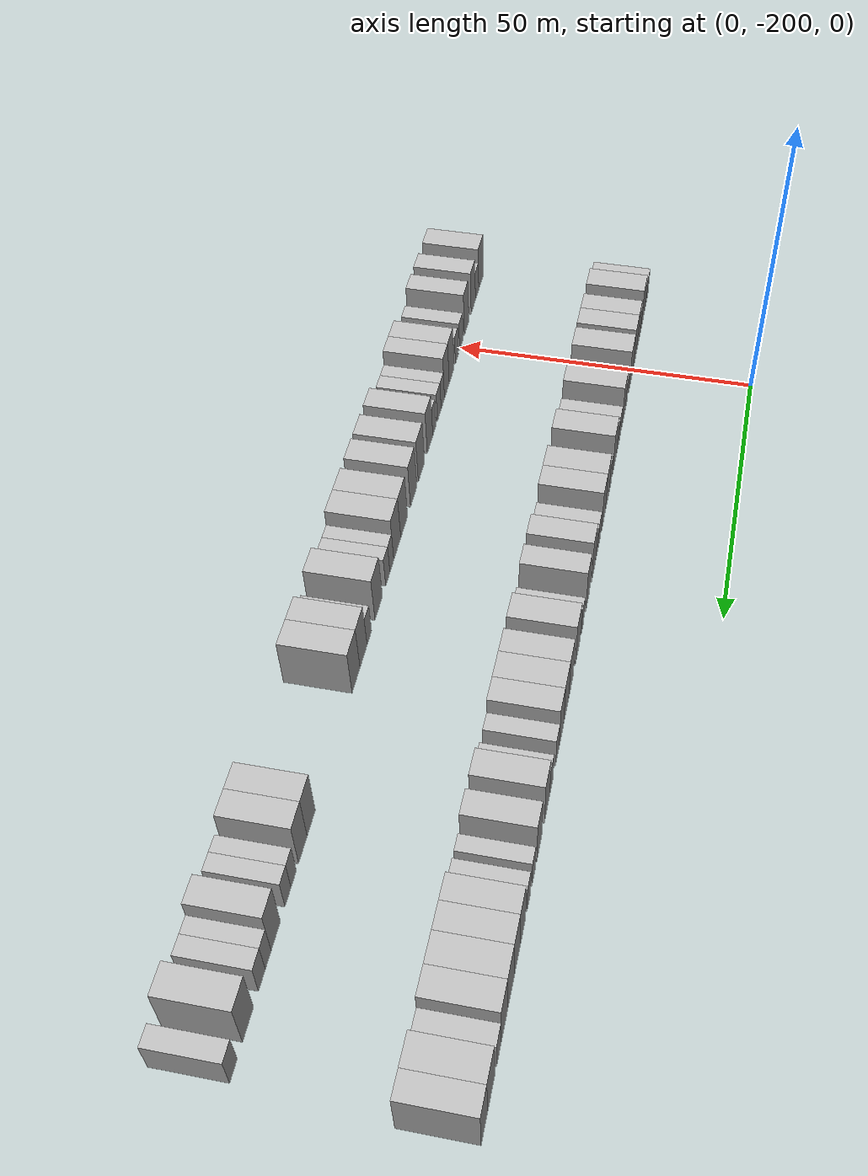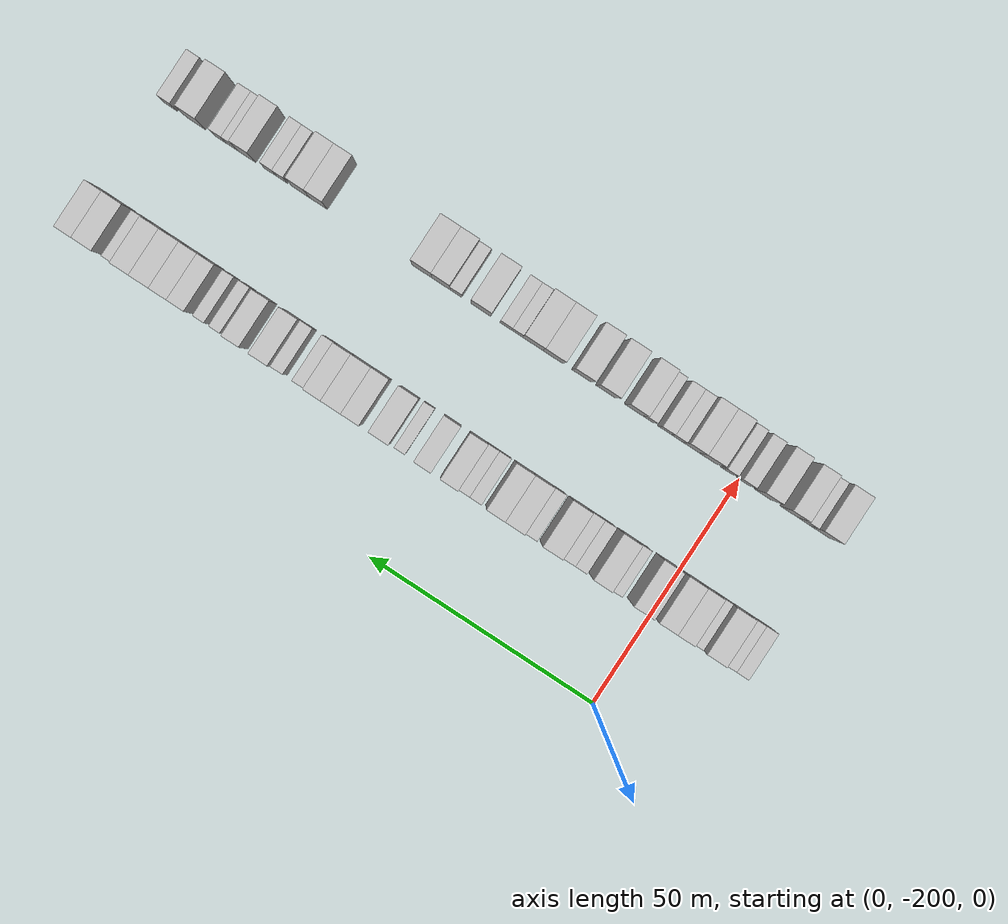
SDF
<sdf version="1.6">
 <world name="default">
  <model name="building_1">
   <static>1</static>
   <pose>25.0000 -218.6765 0 0.000000 0.000000 0.000000</pose>
   <link name="link">
    <pose>0 0 3.00 0 0 0</pose>
    <collision name="collision"><geometry><box><size>10.0000 2.6469 6.0000</size></box></geometry></collision>
    <visual name="visual">
     <cast_shadows>0</cast_shadows>
     <geometry><box><size>10.0000 2.6469 6.0000</size></box></geometry>
     <material>
      <script>
       <uri>model://HANNAS_wall/materials/scripts</uri>
       <uri>model://HANNAS_wall/materials/textures</uri>
       <name>vrc/HANNAS_wall</name>
      </script>
     </material>
    </visual>
   </link>
  </model>
  <model name="building_2">
   <static>1</static>
   <pose>25.0000 -215.8874 0 0.000000 0.000000 0.000000</pose>
   <link name="link">
    <pose>0 0 3.00 0 0 0</pose>
    <collision name="collision"><geometry><box><size>10.0000 2.9313 6.0000</size></box></geometry></collision>
    <visual name="visual">
     <cast_shadows>0</cast_shadows>
     <geometry><box><size>10.0000 2.9313 6.0000</size></box></geometry>
     <material>
      <script>
       <uri>model://HANNAS_wall/materials/scripts</uri>
       <uri>model://HANNAS_wall/materials/textures</uri>
       <name>vrc/HANNAS_wall</name>
      </script>
     </material>
    </visual>
   </link>
  </model>
  <model name="building_3">
   <static>1</static>
   <pose>25.0000 -212.2901 0 0.000000 0.000000 0.000000</pose>
   <link name="link">
    <pose>0 0 4.50 0 0 0</pose>
    <collision name="collision"><geometry><box><size>10.0000 4.2634 9.0000</size></box></geometry></collision>
    <visual name="visual">
     <cast_shadows>0</cast_shadows>
     <geometry><box><size>10.0000 4.2634 9.0000</size></box></geometry>
     <material>
      <script>
       <uri>model://HANNAS_wall/materials/scripts</uri>
       <uri>model://HANNAS_wall/materials/textures</uri>
       <name>vrc/HANNAS_wall</name>
      </script>
     </material>
    </visual>
   </link>
  </model>
  <model name="building_4">
   <static>1</static>
   <pose>25.0000 -208.8919 0 0.000000 0.000000 0.000000</pose>
   <link name="link">
    <pose>0 0 3.00 0 0 0</pose>
    <collision name="collision"><geometry><box><size>10.0000 2.5329 6.0000</size></box></geometry></collision>
    <visual name="visual">
     <cast_shadows>0</cast_shadows>
     <geometry><box><size>10.0000 2.5329 6.0000</size></box></geometry>
     <material>
      <script>
       <uri>model://HANNAS_wall/materials/scripts</uri>
       <uri>model://HANNAS_wall/materials/textures</uri>
       <name>vrc/HANNAS_wall</name>
      </script>
     </material>
    </visual>
   </link>
  </model>
  <model name="building_5">
   <static>1</static>
   <pose>25.0000 -205.7682 0 0.000000 0.000000 0.000000</pose>
   <link name="link">
    <pose>0 0 4.50 0 0 0</pose>
    <collision name="collision"><geometry><box><size>10.0000 3.7144 9.0000</size></box></geometry></collision>
    <visual name="visual">
     <cast_shadows>0</cast_shadows>
     <geometry><box><size>10.0000 3.7144 9.0000</size></box></geometry>
     <material>
      <script>
       <uri>model://HANNAS_wall/materials/scripts</uri>
       <uri>model://HANNAS_wall/materials/textures</uri>
       <name>vrc/HANNAS_wall</name>
      </script>
     </material>
    </visual>
   </link>
  </model>
  <model name="building_6">
   <static>1</static>
   <pose>25.0000 -201.9411 0 0.000000 0.000000 0.000000</pose>
   <link name="link">
    <pose>0 0 4.50 0 0 0</pose>
    <collision name="collision"><geometry><box><size>10.0000 3.9398 9.0000</size></box></geometry></collision>
    <visual name="visual">
     <cast_shadows>0</cast_shadows>
     <geometry><box><size>10.0000 3.9398 9.0000</size></box></geometry>
     <material>
      <script>
       <uri>model://HANNAS_wall/materials/scripts</uri>
       <uri>model://HANNAS_wall/materials/textures</uri>
       <name>vrc/HANNAS_wall</name>
      </script>
     </material>
    </visual>
   </link>
  </model>
  <model name="building_7">
   <static>1</static>
   <pose>25.0000 -196.7519 0 0.000000 0.000000 0.000000</pose>
   <link name="link">
    <pose>0 0 4.50 0 0 0</pose>
    <collision name="collision"><geometry><box><size>10.0000 4.4386 9.0000</size></box></geometry></collision>
    <visual name="visual">
     <cast_shadows>0</cast_shadows>
     <geometry><box><size>10.0000 4.4386 9.0000</size></box></geometry>
     <material>
      <script>
       <uri>model://HANNAS_wall/materials/scripts</uri>
       <uri>model://HANNAS_wall/materials/textures</uri>
       <name>vrc/HANNAS_wall</name>
      </script>
     </material>
    </visual>
   </link>
  </model>
  <model name="building_8">
   <static>1</static>
   <pose>25.0000 -191.2256 0 0.000000 0.000000 0.000000</pose>
   <link name="link">
    <pose>0 0 3.00 0 0 0</pose>
    <collision name="collision"><geometry><box><size>10.0000 2.6140 6.0000</size></box></geometry></collision>
    <visual name="visual">
     <cast_shadows>0</cast_shadows>
     <geometry><box><size>10.0000 2.6140 6.0000</size></box></geometry>
     <material>
      <script>
       <uri>model://HANNAS_wall/materials/scripts</uri>
       <uri>model://HANNAS_wall/materials/textures</uri>
       <name>vrc/HANNAS_wall</name>
      </script>
     </material>
    </visual>
   </link>
  </model>
  <model name="building_9">
   <static>1</static>
   <pose>25.0000 -187.8880 0 0.000000 0.000000 0.000000</pose>
   <link name="link">
    <pose>0 0 4.50 0 0 0</pose>
    <collision name="collision"><geometry><box><size>10.0000 4.0611 9.0000</size></box></geometry></collision>
    <visual name="visual">
     <cast_shadows>0</cast_shadows>
     <geometry><box><size>10.0000 4.0611 9.0000</size></box></geometry>
     <material>
      <script>
       <uri>model://HANNAS_wall/materials/scripts</uri>
       <uri>model://HANNAS_wall/materials/textures</uri>
       <name>vrc/HANNAS_wall</name>
      </script>
     </material>
    </visual>
   </link>
  </model>
  <model name="building_10">
   <static>1</static>
   <pose>25.0000 -183.5854 0 0.000000 0.000000 0.000000</pose>
   <link name="link">
    <pose>0 0 3.00 0 0 0</pose>
    <collision name="collision"><geometry><box><size>10.0000 2.5442 6.0000</size></box></geometry></collision>
    <visual name="visual">
     <cast_shadows>0</cast_shadows>
     <geometry><box><size>10.0000 2.5442 6.0000</size></box></geometry>
     <material>
      <script>
       <uri>model://HANNAS_wall/materials/scripts</uri>
       <uri>model://HANNAS_wall/materials/textures</uri>
       <name>vrc/HANNAS_wall</name>
      </script>
     </material>
    </visual>
   </link>
  </model>
  <model name="building_11">
   <static>1</static>
   <pose>25.0000 -180.8187 0 0.000000 0.000000 0.000000</pose>
   <link name="link">
    <pose>0 0 3.00 0 0 0</pose>
    <collision name="collision"><geometry><box><size>10.0000 2.9892 6.0000</size></box></geometry></collision>
    <visual name="visual">
     <cast_shadows>0</cast_shadows>
     <geometry><box><size>10.0000 2.9892 6.0000</size></box></geometry>
     <material>
      <script>
       <uri>model://HANNAS_wall/materials/scripts</uri>
       <uri>model://HANNAS_wall/materials/textures</uri>
       <name>vrc/HANNAS_wall</name>
      </script>
     </material>
    </visual>
   </link>
  </model>
  <model name="building_12">
   <static>1</static>
   <pose>25.0000 -177.1637 0 0.000000 0.000000 0.000000</pose>
   <link name="link">
    <pose>0 0 4.50 0 0 0</pose>
    <collision name="collision"><geometry><box><size>10.0000 4.3208 9.0000</size></box></geometry></collision>
    <visual name="visual">
     <cast_shadows>0</cast_shadows>
     <geometry><box><size>10.0000 4.3208 9.0000</size></box></geometry>
     <material>
      <script>
       <uri>model://HANNAS_wall/materials/scripts</uri>
       <uri>model://HANNAS_wall/materials/textures</uri>
       <name>vrc/HANNAS_wall</name>
      </script>
     </material>
    </visual>
   </link>
  </model>
  <model name="building_13">
   <static>1</static>
   <pose>25.0000 -172.5812 0 0.000000 0.000000 0.000000</pose>
   <link name="link">
    <pose>0 0 3.00 0 0 0</pose>
    <collision name="collision"><geometry><box><size>10.0000 2.8442 6.0000</size></box></geometry></collision>
    <visual name="visual">
     <cast_shadows>0</cast_shadows>
     <geometry><box><size>10.0000 2.8442 6.0000</size></box></geometry>
     <material>
      <script>
       <uri>model://HANNAS_wall/materials/scripts</uri>
       <uri>model://HANNAS_wall/materials/textures</uri>
       <name>vrc/HANNAS_wall</name>
      </script>
     </material>
    </visual>
   </link>
  </model>
  <model name="building_14">
   <static>1</static>
   <pose>25.0000 -169.0431 0 0.000000 0.000000 0.000000</pose>
   <link name="link">
    <pose>0 0 4.50 0 0 0</pose>
    <collision name="collision"><geometry><box><size>10.0000 4.2320 9.0000</size></box></geometry></collision>
    <visual name="visual">
     <cast_shadows>0</cast_shadows>
     <geometry><box><size>10.0000 4.2320 9.0000</size></box></geometry>
     <material>
      <script>
       <uri>model://HANNAS_wall/materials/scripts</uri>
       <uri>model://HANNAS_wall/materials/textures</uri>
       <name>vrc/HANNAS_wall</name>
      </script>
     </material>
    </visual>
   </link>
  </model>
  <model name="building_15">
   <static>1</static>
   <pose>25.0000 -164.9125 0 0.000000 0.000000 0.000000</pose>
   <link name="link">
    <pose>0 0 4.50 0 0 0</pose>
    <collision name="collision"><geometry><box><size>10.0000 4.0294 9.0000</size></box></geometry></collision>
    <visual name="visual">
     <cast_shadows>0</cast_shadows>
     <geometry><box><size>10.0000 4.0294 9.0000</size></box></geometry>
     <material>
      <script>
       <uri>model://HANNAS_wall/materials/scripts</uri>
       <uri>model://HANNAS_wall/materials/textures</uri>
       <name>vrc/HANNAS_wall</name>
      </script>
     </material>
    </visual>
   </link>
  </model>
  <model name="building_16">
   <static>1</static>
   <pose>25.0000 -160.6049 0 0.000000 0.000000 0.000000</pose>
   <link name="link">
    <pose>0 0 3.00 0 0 0</pose>
    <collision name="collision"><geometry><box><size>10.0000 2.5857 6.0000</size></box></geometry></collision>
    <visual name="visual">
     <cast_shadows>0</cast_shadows>
     <geometry><box><size>10.0000 2.5857 6.0000</size></box></geometry>
     <material>
      <script>
       <uri>model://HANNAS_wall/materials/scripts</uri>
       <uri>model://HANNAS_wall/materials/textures</uri>
       <name>vrc/HANNAS_wall</name>
      </script>
     </material>
    </visual>
   </link>
  </model>
  <model name="building_17">
   <static>1</static>
   <pose>25.0000 -158.0587 0 0.000000 0.000000 0.000000</pose>
   <link name="link">
    <pose>0 0 3.00 0 0 0</pose>
    <collision name="collision"><geometry><box><size>10.0000 2.5066 6.0000</size></box></geometry></collision>
    <visual name="visual">
     <cast_shadows>0</cast_shadows>
     <geometry><box><size>10.0000 2.5066 6.0000</size></box></geometry>
     <material>
      <script>
       <uri>model://HANNAS_wall/materials/scripts</uri>
       <uri>model://HANNAS_wall/materials/textures</uri>
       <name>vrc/HANNAS_wall</name>
      </script>
     </material>
    </visual>
   </link>
  </model>
  <model name="building_18">
   <static>1</static>
   <pose>25.0000 -154.8702 0 0.000000 0.000000 0.000000</pose>
   <link name="link">
    <pose>0 0 4.50 0 0 0</pose>
    <collision name="collision"><geometry><box><size>10.0000 3.8704 9.0000</size></box></geometry></collision>
    <visual name="visual">
     <cast_shadows>0</cast_shadows>
     <geometry><box><size>10.0000 3.8704 9.0000</size></box></geometry>
     <material>
      <script>
       <uri>model://HANNAS_wall/materials/scripts</uri>
       <uri>model://HANNAS_wall/materials/textures</uri>
       <name>vrc/HANNAS_wall</name>
      </script>
     </material>
    </visual>
   </link>
  </model>
  <model name="building_19">
   <static>1</static>
   <pose>25.0000 -149.0745 0 0.000000 0.000000 0.000000</pose>
   <link name="link">
    <pose>0 0 4.50 0 0 0</pose>
    <collision name="collision"><geometry><box><size>10.0000 3.7209 9.0000</size></box></geometry></collision>
    <visual name="visual">
     <cast_shadows>0</cast_shadows>
     <geometry><box><size>10.0000 3.7209 9.0000</size></box></geometry>
     <material>
      <script>
       <uri>model://HANNAS_wall/materials/scripts</uri>
       <uri>model://HANNAS_wall/materials/textures</uri>
       <name>vrc/HANNAS_wall</name>
      </script>
     </material>
    </visual>
   </link>
  </model>
  <model name="building_20">
   <static>1</static>
   <pose>25.0000 -144.0134 0 0.000000 0.000000 0.000000</pose>
   <link name="link">
    <pose>0 0 3.00 0 0 0</pose>
    <collision name="collision"><geometry><box><size>10.0000 2.4014 6.0000</size></box></geometry></collision>
    <visual name="visual">
     <cast_shadows>0</cast_shadows>
     <geometry><box><size>10.0000 2.4014 6.0000</size></box></geometry>
     <material>
      <script>
       <uri>model://HANNAS_wall/materials/scripts</uri>
       <uri>model://HANNAS_wall/materials/textures</uri>
       <name>vrc/HANNAS_wall</name>
      </script>
     </material>
    </visual>
   </link>
  </model>
  <model name="building_21">
   <static>1</static>
   <pose>25.0000 -139.6364 0 0.000000 0.000000 0.000000</pose>
   <link name="link">
    <pose>0 0 4.50 0 0 0</pose>
    <collision name="collision"><geometry><box><size>10.0000 4.3525 9.0000</size></box></geometry></collision>
    <visual name="visual">
     <cast_shadows>0</cast_shadows>
     <geometry><box><size>10.0000 4.3525 9.0000</size></box></geometry>
     <material>
      <script>
       <uri>model://HANNAS_wall/materials/scripts</uri>
       <uri>model://HANNAS_wall/materials/textures</uri>
       <name>vrc/HANNAS_wall</name>
      </script>
     </material>
    </visual>
   </link>
  </model>
  <model name="building_22">
   <static>1</static>
   <pose>25.0000 -133.5092 0 0.000000 0.000000 0.000000</pose>
   <link name="link">
    <pose>0 0 4.50 0 0 0</pose>
    <collision name="collision"><geometry><box><size>10.0000 3.9018 9.0000</size></box></geometry></collision>
    <visual name="visual">
     <cast_shadows>0</cast_shadows>
     <geometry><box><size>10.0000 3.9018 9.0000</size></box></geometry>
     <material>
      <script>
       <uri>model://HANNAS_wall/materials/scripts</uri>
       <uri>model://HANNAS_wall/materials/textures</uri>
       <name>vrc/HANNAS_wall</name>
      </script>
     </material>
    </visual>
   </link>
  </model>
  <model name="building_23">
   <static>1</static>
   <pose>25.0000 -129.3947 0 0.000000 0.000000 0.000000</pose>
   <link name="link">
    <pose>0 0 4.50 0 0 0</pose>
    <collision name="collision"><geometry><box><size>10.0000 4.3272 9.0000</size></box></geometry></collision>
    <visual name="visual">
     <cast_shadows>0</cast_shadows>
     <geometry><box><size>10.0000 4.3272 9.0000</size></box></geometry>
     <material>
      <script>
       <uri>model://HANNAS_wall/materials/scripts</uri>
       <uri>model://HANNAS_wall/materials/textures</uri>
       <name>vrc/HANNAS_wall</name>
      </script>
     </material>
    </visual>
   </link>
  </model>
  <model name="building_24">
   <static>1</static>
   <pose>25.0000 -125.3055 0 0.000000 0.000000 0.000000</pose>
   <link name="link">
    <pose>0 0 4.50 0 0 0</pose>
    <collision name="collision"><geometry><box><size>10.0000 3.8513 9.0000</size></box></geometry></collision>
    <visual name="visual">
     <cast_shadows>0</cast_shadows>
     <geometry><box><size>10.0000 3.8513 9.0000</size></box></geometry>
     <material>
      <script>
       <uri>model://HANNAS_wall/materials/scripts</uri>
       <uri>model://HANNAS_wall/materials/textures</uri>
       <name>vrc/HANNAS_wall</name>
      </script>
     </material>
    </visual>
   </link>
  </model>
  <model name="building_25">
   <static>1</static>
   <pose>25.0000 -121.9807 0 0.000000 0.000000 0.000000</pose>
   <link name="link">
    <pose>0 0 3.00 0 0 0</pose>
    <collision name="collision"><geometry><box><size>10.0000 2.7983 6.0000</size></box></geometry></collision>
    <visual name="visual">
     <cast_shadows>0</cast_shadows>
     <geometry><box><size>10.0000 2.7983 6.0000</size></box></geometry>
     <material>
      <script>
       <uri>model://HANNAS_wall/materials/scripts</uri>
       <uri>model://HANNAS_wall/materials/textures</uri>
       <name>vrc/HANNAS_wall</name>
      </script>
     </material>
    </visual>
   </link>
  </model>
  <model name="building_26">
   <static>1</static>
   <pose>25.0000 -117.2089 0 0.000000 0.000000 0.000000</pose>
   <link name="link">
    <pose>0 0 3.00 0 0 0</pose>
    <collision name="collision"><geometry><box><size>10.0000 2.7454 6.0000</size></box></geometry></collision>
    <visual name="visual">
     <cast_shadows>0</cast_shadows>
     <geometry><box><size>10.0000 2.7454 6.0000</size></box></geometry>
     <material>
      <script>
       <uri>model://HANNAS_wall/materials/scripts</uri>
       <uri>model://HANNAS_wall/materials/textures</uri>
       <name>vrc/HANNAS_wall</name>
      </script>
     </material>
    </visual>
   </link>
  </model>
  <model name="building_27">
   <static>1</static>
   <pose>25.0000 -113.7824 0 0.000000 0.000000 0.000000</pose>
   <link name="link">
    <pose>0 0 4.50 0 0 0</pose>
    <collision name="collision"><geometry><box><size>10.0000 4.1076 9.0000</size></box></geometry></collision>
    <visual name="visual">
     <cast_shadows>0</cast_shadows>
     <geometry><box><size>10.0000 4.1076 9.0000</size></box></geometry>
     <material>
      <script>
       <uri>model://HANNAS_wall/materials/scripts</uri>
       <uri>model://HANNAS_wall/materials/textures</uri>
       <name>vrc/HANNAS_wall</name>
      </script>
     </material>
    </visual>
   </link>
  </model>
  <model name="building_28">
   <static>1</static>
   <pose>25.0000 -107.8168 0 0.000000 0.000000 0.000000</pose>
   <link name="link">
    <pose>0 0 4.50 0 0 0</pose>
    <collision name="collision"><geometry><box><size>10.0000 3.8236 9.0000</size></box></geometry></collision>
    <visual name="visual">
     <cast_shadows>0</cast_shadows>
     <geometry><box><size>10.0000 3.8236 9.0000</size></box></geometry>
     <material>
      <script>
       <uri>model://HANNAS_wall/materials/scripts</uri>
       <uri>model://HANNAS_wall/materials/textures</uri>
       <name>vrc/HANNAS_wall</name>
      </script>
     </material>
    </visual>
   </link>
  </model>
  <model name="building_29">
   <static>1</static>
   <pose>25.0000 -103.6696 0 0.000000 0.000000 0.000000</pose>
   <link name="link">
    <pose>0 0 3.00 0 0 0</pose>
    <collision name="collision"><geometry><box><size>10.0000 2.4709 6.0000</size></box></geometry></collision>
    <visual name="visual">
     <cast_shadows>0</cast_shadows>
     <geometry><box><size>10.0000 2.4709 6.0000</size></box></geometry>
     <material>
      <script>
       <uri>model://HANNAS_wall/materials/scripts</uri>
       <uri>model://HANNAS_wall/materials/textures</uri>
       <name>vrc/HANNAS_wall</name>
      </script>
     </material>
    </visual>
   </link>
  </model>
  <model name="building_30">
   <static>1</static>
   <pose>25.0000 -100.1896 0 0.000000 0.000000 0.000000</pose>
   <link name="link">
    <pose>0 0 3.00 0 0 0</pose>
    <collision name="collision"><geometry><box><size>10.0000 2.4890 6.0000</size></box></geometry></collision>
    <visual name="visual">
     <cast_shadows>0</cast_shadows>
     <geometry><box><size>10.0000 2.4890 6.0000</size></box></geometry>
     <material>
      <script>
       <uri>model://HANNAS_wall/materials/scripts</uri>
       <uri>model://HANNAS_wall/materials/textures</uri>
       <name>vrc/HANNAS_wall</name>
      </script>
     </material>
    </visual>
   </link>
  </model>
  <model name="building_31">
   <static>1</static>
   <pose>25.0000 -96.0738 0 0.000000 0.000000 0.000000</pose>
   <link name="link">
    <pose>0 0 4.50 0 0 0</pose>
    <collision name="collision"><geometry><box><size>10.0000 3.7427 9.0000</size></box></geometry></collision>
    <visual name="visual">
     <cast_shadows>0</cast_shadows>
     <geometry><box><size>10.0000 3.7427 9.0000</size></box></geometry>
     <material>
      <script>
       <uri>model://HANNAS_wall/materials/scripts</uri>
       <uri>model://HANNAS_wall/materials/textures</uri>
       <name>vrc/HANNAS_wall</name>
      </script>
     </material>
    </visual>
   </link>
  </model>
  <model name="building_32">
   <static>1</static>
   <pose>25.0000 -92.2656 0 0.000000 0.000000 0.000000</pose>
   <link name="link">
    <pose>0 0 4.50 0 0 0</pose>
    <collision name="collision"><geometry><box><size>10.0000 3.8736 9.0000</size></box></geometry></collision>
    <visual name="visual">
     <cast_shadows>0</cast_shadows>
     <geometry><box><size>10.0000 3.8736 9.0000</size></box></geometry>
     <material>
      <script>
       <uri>model://HANNAS_wall/materials/scripts</uri>
       <uri>model://HANNAS_wall/materials/textures</uri>
       <name>vrc/HANNAS_wall</name>
      </script>
     </material>
    </visual>
   </link>
  </model>
  <model name="building_33">
   <static>1</static>
   <pose>25.0000 -88.1891 0 0.000000 0.000000 0.000000</pose>
   <link name="link">
    <pose>0 0 4.50 0 0 0</pose>
    <collision name="collision"><geometry><box><size>10.0000 4.2794 9.0000</size></box></geometry></collision>
    <visual name="visual">
     <cast_shadows>0</cast_shadows>
     <geometry><box><size>10.0000 4.2794 9.0000</size></box></geometry>
     <material>
      <script>
       <uri>model://HANNAS_wall/materials/scripts</uri>
       <uri>model://HANNAS_wall/materials/textures</uri>
       <name>vrc/HANNAS_wall</name>
      </script>
     </material>
    </visual>
   </link>
  </model>
  <model name="building_34">
   <static>1</static>
   <pose>25.0000 -84.0061 0 0.000000 0.000000 0.000000</pose>
   <link name="link">
    <pose>0 0 4.50 0 0 0</pose>
    <collision name="collision"><geometry><box><size>10.0000 4.0865 9.0000</size></box></geometry></collision>
    <visual name="visual">
     <cast_shadows>0</cast_shadows>
     <geometry><box><size>10.0000 4.0865 9.0000</size></box></geometry>
     <material>
      <script>
       <uri>model://HANNAS_wall/materials/scripts</uri>
       <uri>model://HANNAS_wall/materials/textures</uri>
       <name>vrc/HANNAS_wall</name>
      </script>
     </material>
    </visual>
   </link>
  </model>
  <model name="building_35">
   <static>1</static>
   <pose>25.0000 -80.5269 0 0.000000 0.000000 0.000000</pose>
   <link name="link">
    <pose>0 0 3.00 0 0 0</pose>
    <collision name="collision"><geometry><box><size>10.0000 2.8718 6.0000</size></box></geometry></collision>
    <visual name="visual">
     <cast_shadows>0</cast_shadows>
     <geometry><box><size>10.0000 2.8718 6.0000</size></box></geometry>
     <material>
      <script>
       <uri>model://HANNAS_wall/materials/scripts</uri>
       <uri>model://HANNAS_wall/materials/textures</uri>
       <name>vrc/HANNAS_wall</name>
      </script>
     </material>
    </visual>
   </link>
  </model>
  <model name="building_36">
   <static>1</static>
   <pose>25.0000 -75.9155 0 0.000000 0.000000 0.000000</pose>
   <link name="link">
    <pose>0 0 4.50 0 0 0</pose>
    <collision name="collision"><geometry><box><size>10.0000 4.3510 9.0000</size></box></geometry></collision>
    <visual name="visual">
     <cast_shadows>0</cast_shadows>
     <geometry><box><size>10.0000 4.3510 9.0000</size></box></geometry>
     <material>
      <script>
       <uri>model://HANNAS_wall/materials/scripts</uri>
       <uri>model://HANNAS_wall/materials/textures</uri>
       <name>vrc/HANNAS_wall</name>
      </script>
     </material>
    </visual>
   </link>
  </model>
  <model name="building_37">
   <static>1</static>
   <pose>25.0000 -71.8836 0 0.000000 0.000000 0.000000</pose>
   <link name="link">
    <pose>0 0 4.50 0 0 0</pose>
    <collision name="collision"><geometry><box><size>10.0000 3.7129 9.0000</size></box></geometry></collision>
    <visual name="visual">
     <cast_shadows>0</cast_shadows>
     <geometry><box><size>10.0000 3.7129 9.0000</size></box></geometry>
     <material>
      <script>
       <uri>model://HANNAS_wall/materials/scripts</uri>
       <uri>model://HANNAS_wall/materials/textures</uri>
       <name>vrc/HANNAS_wall</name>
      </script>
     </material>
    </visual>
   </link>
  </model>
  <model name="building_103">
   <static>1</static>
   <pose>55.0000 -217.8646 0 0.000000 0.000000 0.000000</pose>
   <link name="link">
    <pose>0 0 4.50 0 0 0</pose>
    <collision name="collision"><geometry><box><size>10.0000 4.2708 9.0000</size></box></geometry></collision>
    <visual name="visual">
     <cast_shadows>0</cast_shadows>
     <geometry><box><size>10.0000 4.2708 9.0000</size></box></geometry>
     <material>
      <script>
       <uri>model://HANNAS_wall/materials/scripts</uri>
       <uri>model://HANNAS_wall/materials/textures</uri>
       <name>vrc/HANNAS_wall</name>
      </script>
     </material>
    </visual>
   </link>
  </model>
  <model name="building_104">
   <static>1</static>
   <pose>55.0000 -214.2717 0 0.000000 0.000000 0.000000</pose>
   <link name="link">
    <pose>0 0 3.00 0 0 0</pose>
    <collision name="collision"><geometry><box><size>10.0000 2.9150 6.0000</size></box></geometry></collision>
    <visual name="visual">
     <cast_shadows>0</cast_shadows>
     <geometry><box><size>10.0000 2.9150 6.0000</size></box></geometry>
     <material>
      <script>
       <uri>model://HANNAS_wall/materials/scripts</uri>
       <uri>model://HANNAS_wall/materials/textures</uri>
       <name>vrc/HANNAS_wall</name>
      </script>
     </material>
    </visual>
   </link>
  </model>
  <model name="building_105">
   <static>1</static>
   <pose>55.0000 -210.9244 0 0.000000 0.000000 0.000000</pose>
   <link name="link">
    <pose>0 0 4.50 0 0 0</pose>
    <collision name="collision"><geometry><box><size>10.0000 3.7796 9.0000</size></box></geometry></collision>
    <visual name="visual">
     <cast_shadows>0</cast_shadows>
     <geometry><box><size>10.0000 3.7796 9.0000</size></box></geometry>
     <material>
      <script>
       <uri>model://HANNAS_wall/materials/scripts</uri>
       <uri>model://HANNAS_wall/materials/textures</uri>
       <name>vrc/HANNAS_wall</name>
      </script>
     </material>
    </visual>
   </link>
  </model>
  <model name="building_106">
   <static>1</static>
   <pose>55.0000 -205.1355 0 0.000000 0.000000 0.000000</pose>
   <link name="link">
    <pose>0 0 4.50 0 0 0</pose>
    <collision name="collision"><geometry><box><size>10.0000 3.7982 9.0000</size></box></geometry></collision>
    <visual name="visual">
     <cast_shadows>0</cast_shadows>
     <geometry><box><size>10.0000 3.7982 9.0000</size></box></geometry>
     <material>
      <script>
       <uri>model://HANNAS_wall/materials/scripts</uri>
       <uri>model://HANNAS_wall/materials/textures</uri>
       <name>vrc/HANNAS_wall</name>
      </script>
     </material>
    </visual>
   </link>
  </model>
  <model name="building_107">
   <static>1</static>
   <pose>55.0000 -200.7471 0 0.000000 0.000000 0.000000</pose>
   <link name="link">
    <pose>0 0 3.00 0 0 0</pose>
    <collision name="collision"><geometry><box><size>10.0000 2.9786 6.0000</size></box></geometry></collision>
    <visual name="visual">
     <cast_shadows>0</cast_shadows>
     <geometry><box><size>10.0000 2.9786 6.0000</size></box></geometry>
     <material>
      <script>
       <uri>model://HANNAS_wall/materials/scripts</uri>
       <uri>model://HANNAS_wall/materials/textures</uri>
       <name>vrc/HANNAS_wall</name>
      </script>
     </material>
    </visual>
   </link>
  </model>
  <model name="building_108">
   <static>1</static>
   <pose>55.0000 -197.0216 0 0.000000 0.000000 0.000000</pose>
   <link name="link">
    <pose>0 0 3.00 0 0 0</pose>
    <collision name="collision"><geometry><box><size>10.0000 2.4722 6.0000</size></box></geometry></collision>
    <visual name="visual">
     <cast_shadows>0</cast_shadows>
     <geometry><box><size>10.0000 2.4722 6.0000</size></box></geometry>
     <material>
      <script>
       <uri>model://HANNAS_wall/materials/scripts</uri>
       <uri>model://HANNAS_wall/materials/textures</uri>
       <name>vrc/HANNAS_wall</name>
      </script>
     </material>
    </visual>
   </link>
  </model>
  <model name="building_109">
   <static>1</static>
   <pose>55.0000 -192.8067 0 0.000000 0.000000 0.000000</pose>
   <link name="link">
    <pose>0 0 4.50 0 0 0</pose>
    <collision name="collision"><geometry><box><size>10.0000 3.9577 9.0000</size></box></geometry></collision>
    <visual name="visual">
     <cast_shadows>0</cast_shadows>
     <geometry><box><size>10.0000 3.9577 9.0000</size></box></geometry>
     <material>
      <script>
       <uri>model://HANNAS_wall/materials/scripts</uri>
       <uri>model://HANNAS_wall/materials/textures</uri>
       <name>vrc/HANNAS_wall</name>
      </script>
     </material>
    </visual>
   </link>
  </model>
  <model name="building_110">
   <static>1</static>
   <pose>55.0000 -188.9701 0 0.000000 0.000000 0.000000</pose>
   <link name="link">
    <pose>0 0 4.50 0 0 0</pose>
    <collision name="collision"><geometry><box><size>10.0000 3.7154 9.0000</size></box></geometry></collision>
    <visual name="visual">
     <cast_shadows>0</cast_shadows>
     <geometry><box><size>10.0000 3.7154 9.0000</size></box></geometry>
     <material>
      <script>
       <uri>model://HANNAS_wall/materials/scripts</uri>
       <uri>model://HANNAS_wall/materials/textures</uri>
       <name>vrc/HANNAS_wall</name>
      </script>
     </material>
    </visual>
   </link>
  </model>
  <model name="building_111">
   <static>1</static>
   <pose>55.0000 -185.8300 0 0.000000 0.000000 0.000000</pose>
   <link name="link">
    <pose>0 0 3.00 0 0 0</pose>
    <collision name="collision"><geometry><box><size>10.0000 2.5649 6.0000</size></box></geometry></collision>
    <visual name="visual">
     <cast_shadows>0</cast_shadows>
     <geometry><box><size>10.0000 2.5649 6.0000</size></box></geometry>
     <material>
      <script>
       <uri>model://HANNAS_wall/materials/scripts</uri>
       <uri>model://HANNAS_wall/materials/textures</uri>
       <name>vrc/HANNAS_wall</name>
      </script>
     </material>
    </visual>
   </link>
  </model>
  <model name="building_112">
   <static>1</static>
   <pose>55.0000 -183.1184 0 0.000000 0.000000 0.000000</pose>
   <link name="link">
    <pose>0 0 3.00 0 0 0</pose>
    <collision name="collision"><geometry><box><size>10.0000 2.8582 6.0000</size></box></geometry></collision>
    <visual name="visual">
     <cast_shadows>0</cast_shadows>
     <geometry><box><size>10.0000 2.8582 6.0000</size></box></geometry>
     <material>
      <script>
       <uri>model://HANNAS_wall/materials/scripts</uri>
       <uri>model://HANNAS_wall/materials/textures</uri>
       <name>vrc/HANNAS_wall</name>
      </script>
     </material>
    </visual>
   </link>
  </model>
  <model name="building_113">
   <static>1</static>
   <pose>55.0000 -179.4867 0 0.000000 0.000000 0.000000</pose>
   <link name="link">
    <pose>0 0 3.00 0 0 0</pose>
    <collision name="collision"><geometry><box><size>10.0000 2.4052 6.0000</size></box></geometry></collision>
    <visual name="visual">
     <cast_shadows>0</cast_shadows>
     <geometry><box><size>10.0000 2.4052 6.0000</size></box></geometry>
     <material>
      <script>
       <uri>model://HANNAS_wall/materials/scripts</uri>
       <uri>model://HANNAS_wall/materials/textures</uri>
       <name>vrc/HANNAS_wall</name>
      </script>
     </material>
    </visual>
   </link>
  </model>
  <model name="building_114">
   <static>1</static>
   <pose>55.0000 -176.2596 0 0.000000 0.000000 0.000000</pose>
   <link name="link">
    <pose>0 0 4.50 0 0 0</pose>
    <collision name="collision"><geometry><box><size>10.0000 4.0492 9.0000</size></box></geometry></collision>
    <visual name="visual">
     <cast_shadows>0</cast_shadows>
     <geometry><box><size>10.0000 4.0492 9.0000</size></box></geometry>
     <material>
      <script>
       <uri>model://HANNAS_wall/materials/scripts</uri>
       <uri>model://HANNAS_wall/materials/textures</uri>
       <name>vrc/HANNAS_wall</name>
      </script>
     </material>
    </visual>
   </link>
  </model>
  <model name="building_115">
   <static>1</static>
   <pose>55.0000 -170.0401 0 0.000000 0.000000 0.000000</pose>
   <link name="link">
    <pose>0 0 4.50 0 0 0</pose>
    <collision name="collision"><geometry><box><size>10.0000 4.3898 9.0000</size></box></geometry></collision>
    <visual name="visual">
     <cast_shadows>0</cast_shadows>
     <geometry><box><size>10.0000 4.3898 9.0000</size></box></geometry>
     <material>
      <script>
       <uri>model://HANNAS_wall/materials/scripts</uri>
       <uri>model://HANNAS_wall/materials/textures</uri>
       <name>vrc/HANNAS_wall</name>
      </script>
     </material>
    </visual>
   </link>
  </model>
  <model name="building_116">
   <static>1</static>
   <pose>55.0000 -164.6676 0 0.000000 0.000000 0.000000</pose>
   <link name="link">
    <pose>0 0 4.50 0 0 0</pose>
    <collision name="collision"><geometry><box><size>10.0000 4.3552 9.0000</size></box></geometry></collision>
    <visual name="visual">
     <cast_shadows>0</cast_shadows>
     <geometry><box><size>10.0000 4.3552 9.0000</size></box></geometry>
     <material>
      <script>
       <uri>model://HANNAS_wall/materials/scripts</uri>
       <uri>model://HANNAS_wall/materials/textures</uri>
       <name>vrc/HANNAS_wall</name>
      </script>
     </material>
    </visual>
   </link>
  </model>
  <model name="building_117">
   <static>1</static>
   <pose>55.0000 -158.2435 0 0.000000 0.000000 0.000000</pose>
   <link name="link">
    <pose>0 0 4.50 0 0 0</pose>
    <collision name="collision"><geometry><box><size>10.0000 4.4929 9.0000</size></box></geometry></collision>
    <visual name="visual">
     <cast_shadows>0</cast_shadows>
     <geometry><box><size>10.0000 4.4929 9.0000</size></box></geometry>
     <material>
      <script>
       <uri>model://HANNAS_wall/materials/scripts</uri>
       <uri>model://HANNAS_wall/materials/textures</uri>
       <name>vrc/HANNAS_wall</name>
      </script>
     </material>
    </visual>
   </link>
  </model>
  <model name="building_118">
   <static>1</static>
   <pose>55.0000 -153.7538 0 0.000000 0.000000 0.000000</pose>
   <link name="link">
    <pose>0 0 4.50 0 0 0</pose>
    <collision name="collision"><geometry><box><size>10.0000 4.4865 9.0000</size></box></geometry></collision>
    <visual name="visual">
     <cast_shadows>0</cast_shadows>
     <geometry><box><size>10.0000 4.4865 9.0000</size></box></geometry>
     <material>
      <script>
       <uri>model://HANNAS_wall/materials/scripts</uri>
       <uri>model://HANNAS_wall/materials/textures</uri>
       <name>vrc/HANNAS_wall</name>
      </script>
     </material>
    </visual>
   </link>
  </model>
  <model name="building_119">
   <static>1</static>
   <pose>55.0000 -150.2860 0 0.000000 0.000000 0.000000</pose>
   <link name="link">
    <pose>0 0 3.00 0 0 0</pose>
    <collision name="collision"><geometry><box><size>10.0000 2.4492 6.0000</size></box></geometry></collision>
    <visual name="visual">
     <cast_shadows>0</cast_shadows>
     <geometry><box><size>10.0000 2.4492 6.0000</size></box></geometry>
     <material>
      <script>
       <uri>model://HANNAS_wall/materials/scripts</uri>
       <uri>model://HANNAS_wall/materials/textures</uri>
       <name>vrc/HANNAS_wall</name>
      </script>
     </material>
    </visual>
   </link>
  </model>
  <model name="building_120">
   <static>1</static>
   <pose>55.0000 -147.7443 0 0.000000 0.000000 0.000000</pose>
   <link name="link">
    <pose>0 0 3.00 0 0 0</pose>
    <collision name="collision"><geometry><box><size>10.0000 2.6344 6.0000</size></box></geometry></collision>
    <visual name="visual">
     <cast_shadows>0</cast_shadows>
     <geometry><box><size>10.0000 2.6344 6.0000</size></box></geometry>
     <material>
      <script>
       <uri>model://HANNAS_wall/materials/scripts</uri>
       <uri>model://HANNAS_wall/materials/textures</uri>
       <name>vrc/HANNAS_wall</name>
      </script>
     </material>
    </visual>
   </link>
  </model>
  <model name="building_121">
   <static>1</static>
   <pose>55.0000 -142.1833 0 0.000000 0.000000 0.000000</pose>
   <link name="link">
    <pose>0 0 4.50 0 0 0</pose>
    <collision name="collision"><geometry><box><size>10.0000 4.4875 9.0000</size></box></geometry></collision>
    <visual name="visual">
     <cast_shadows>0</cast_shadows>
     <geometry><box><size>10.0000 4.4875 9.0000</size></box></geometry>
     <material>
      <script>
       <uri>model://HANNAS_wall/materials/scripts</uri>
       <uri>model://HANNAS_wall/materials/textures</uri>
       <name>vrc/HANNAS_wall</name>
      </script>
     </material>
    </visual>
   </link>
  </model>
  <model name="building_122">
   <static>1</static>
   <pose>55.0000 -136.6261 0 0.000000 0.000000 0.000000</pose>
   <link name="link">
    <pose>0 0 3.00 0 0 0</pose>
    <collision name="collision"><geometry><box><size>10.0000 2.6269 6.0000</size></box></geometry></collision>
    <visual name="visual">
     <cast_shadows>0</cast_shadows>
     <geometry><box><size>10.0000 2.6269 6.0000</size></box></geometry>
     <material>
      <script>
       <uri>model://HANNAS_wall/materials/scripts</uri>
       <uri>model://HANNAS_wall/materials/textures</uri>
       <name>vrc/HANNAS_wall</name>
      </script>
     </material>
    </visual>
   </link>
  </model>
  <model name="building_123">
   <static>1</static>
   <pose>55.0000 -133.2890 0 0.000000 0.000000 0.000000</pose>
   <link name="link">
    <pose>0 0 4.50 0 0 0</pose>
    <collision name="collision"><geometry><box><size>10.0000 4.0474 9.0000</size></box></geometry></collision>
    <visual name="visual">
     <cast_shadows>0</cast_shadows>
     <geometry><box><size>10.0000 4.0474 9.0000</size></box></geometry>
     <material>
      <script>
       <uri>model://HANNAS_wall/materials/scripts</uri>
       <uri>model://HANNAS_wall/materials/textures</uri>
       <name>vrc/HANNAS_wall</name>
      </script>
     </material>
    </visual>
   </link>
  </model>
  <model name="building_124">
   <static>1</static>
   <pose>55.0000 -129.0575 0 0.000000 0.000000 0.000000</pose>
   <link name="link">
    <pose>0 0 4.50 0 0 0</pose>
    <collision name="collision"><geometry><box><size>10.0000 4.4156 9.0000</size></box></geometry></collision>
    <visual name="visual">
     <cast_shadows>0</cast_shadows>
     <geometry><box><size>10.0000 4.4156 9.0000</size></box></geometry>
     <material>
      <script>
       <uri>model://HANNAS_wall/materials/scripts</uri>
       <uri>model://HANNAS_wall/materials/textures</uri>
       <name>vrc/HANNAS_wall</name>
      </script>
     </material>
    </visual>
   </link>
  </model>
  <model name="building_125">
   <static>1</static>
   <pose>55.0000 -105.9140 0 0.000000 0.000000 0.000000</pose>
   <link name="link">
    <pose>0 0 4.50 0 0 0</pose>
    <collision name="collision"><geometry><box><size>10.0000 3.9571 9.0000</size></box></geometry></collision>
    <visual name="visual">
     <cast_shadows>0</cast_shadows>
     <geometry><box><size>10.0000 3.9571 9.0000</size></box></geometry>
     <material>
      <script>
       <uri>model://HANNAS_wall/materials/scripts</uri>
       <uri>model://HANNAS_wall/materials/textures</uri>
       <name>vrc/HANNAS_wall</name>
      </script>
     </material>
    </visual>
   </link>
  </model>
  <model name="building_126">
   <static>1</static>
   <pose>55.0000 -101.9450 0 0.000000 0.000000 0.000000</pose>
   <link name="link">
    <pose>0 0 4.50 0 0 0</pose>
    <collision name="collision"><geometry><box><size>10.0000 3.9810 9.0000</size></box></geometry></collision>
    <visual name="visual">
     <cast_shadows>0</cast_shadows>
     <geometry><box><size>10.0000 3.9810 9.0000</size></box></geometry>
     <material>
      <script>
       <uri>model://HANNAS_wall/materials/scripts</uri>
       <uri>model://HANNAS_wall/materials/textures</uri>
       <name>vrc/HANNAS_wall</name>
      </script>
     </material>
    </visual>
   </link>
  </model>
  <model name="building_127">
   <static>1</static>
   <pose>55.0000 -97.7341 0 0.000000 0.000000 0.000000</pose>
   <link name="link">
    <pose>0 0 3.00 0 0 0</pose>
    <collision name="collision"><geometry><box><size>10.0000 2.4408 6.0000</size></box></geometry></collision>
    <visual name="visual">
     <cast_shadows>0</cast_shadows>
     <geometry><box><size>10.0000 2.4408 6.0000</size></box></geometry>
     <material>
      <script>
       <uri>model://HANNAS_wall/materials/scripts</uri>
       <uri>model://HANNAS_wall/materials/textures</uri>
       <name>vrc/HANNAS_wall</name>
      </script>
     </material>
    </visual>
   </link>
  </model>
  <model name="building_128">
   <static>1</static>
   <pose>55.0000 -95.1772 0 0.000000 0.000000 0.000000</pose>
   <link name="link">
    <pose>0 0 3.00 0 0 0</pose>
    <collision name="collision"><geometry><box><size>10.0000 2.6729 6.0000</size></box></geometry></collision>
    <visual name="visual">
     <cast_shadows>0</cast_shadows>
     <geometry><box><size>10.0000 2.6729 6.0000</size></box></geometry>
     <material>
      <script>
       <uri>model://HANNAS_wall/materials/scripts</uri>
       <uri>model://HANNAS_wall/materials/textures</uri>
       <name>vrc/HANNAS_wall</name>
      </script>
     </material>
    </visual>
   </link>
  </model>
  <model name="building_129">
   <static>1</static>
   <pose>55.0000 -89.8625 0 0.000000 0.000000 0.000000</pose>
   <link name="link">
    <pose>0 0 4.50 0 0 0</pose>
    <collision name="collision"><geometry><box><size>10.0000 3.9565 9.0000</size></box></geometry></collision>
    <visual name="visual">
     <cast_shadows>0</cast_shadows>
     <geometry><box><size>10.0000 3.9565 9.0000</size></box></geometry>
     <material>
      <script>
       <uri>model://HANNAS_wall/materials/scripts</uri>
       <uri>model://HANNAS_wall/materials/textures</uri>
       <name>vrc/HANNAS_wall</name>
      </script>
     </material>
    </visual>
   </link>
  </model>
  <model name="building_130">
   <static>1</static>
   <pose>55.0000 -86.6644 0 0.000000 0.000000 0.000000</pose>
   <link name="link">
    <pose>0 0 3.00 0 0 0</pose>
    <collision name="collision"><geometry><box><size>10.0000 2.4396 6.0000</size></box></geometry></collision>
    <visual name="visual">
     <cast_shadows>0</cast_shadows>
     <geometry><box><size>10.0000 2.4396 6.0000</size></box></geometry>
     <material>
      <script>
       <uri>model://HANNAS_wall/materials/scripts</uri>
       <uri>model://HANNAS_wall/materials/textures</uri>
       <name>vrc/HANNAS_wall</name>
      </script>
     </material>
    </visual>
   </link>
  </model>
  <model name="building_131">
   <static>1</static>
   <pose>55.0000 -84.0355 0 0.000000 0.000000 0.000000</pose>
   <link name="link">
    <pose>0 0 3.00 0 0 0</pose>
    <collision name="collision"><geometry><box><size>10.0000 2.8183 6.0000</size></box></geometry></collision>
    <visual name="visual">
     <cast_shadows>0</cast_shadows>
     <geometry><box><size>10.0000 2.8183 6.0000</size></box></geometry>
     <material>
      <script>
       <uri>model://HANNAS_wall/materials/scripts</uri>
       <uri>model://HANNAS_wall/materials/textures</uri>
       <name>vrc/HANNAS_wall</name>
      </script>
     </material>
    </visual>
   </link>
  </model>
  <model name="building_132">
   <static>1</static>
   <pose>55.0000 -78.4525 0 0.000000 0.000000 0.000000</pose>
   <link name="link">
    <pose>0 0 4.50 0 0 0</pose>
    <collision name="collision"><geometry><box><size>10.0000 4.3476 9.0000</size></box></geometry></collision>
    <visual name="visual">
     <cast_shadows>0</cast_shadows>
     <geometry><box><size>10.0000 4.3476 9.0000</size></box></geometry>
     <material>
      <script>
       <uri>model://HANNAS_wall/materials/scripts</uri>
       <uri>model://HANNAS_wall/materials/textures</uri>
       <name>vrc/HANNAS_wall</name>
      </script>
     </material>
    </visual>
   </link>
  </model>
  <model name="building_133">
   <static>1</static>
   <pose>55.0000 -72.8272 0 0.000000 0.000000 0.000000</pose>
   <link name="link">
    <pose>0 0 3.00 0 0 0</pose>
    <collision name="collision"><geometry><box><size>10.0000 2.9031 6.0000</size></box></geometry></collision>
    <visual name="visual">
     <cast_shadows>0</cast_shadows>
     <geometry><box><size>10.0000 2.9031 6.0000</size></box></geometry>
     <material>
      <script>
       <uri>model://HANNAS_wall/materials/scripts</uri>
       <uri>model://HANNAS_wall/materials/textures</uri>
       <name>vrc/HANNAS_wall</name>
      </script>
     </material>
    </visual>
   </link>
  </model>
 </world>
</sdf>
